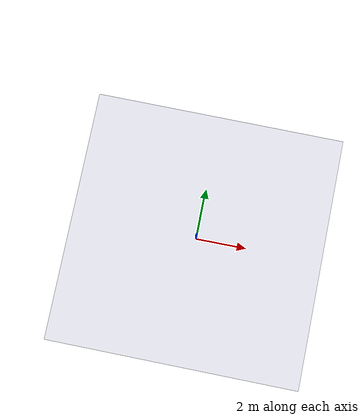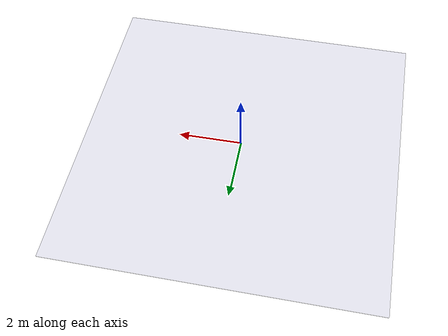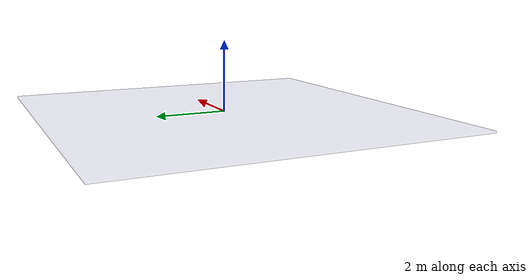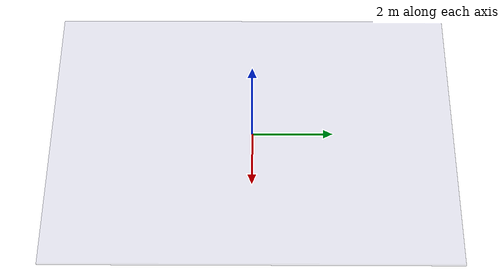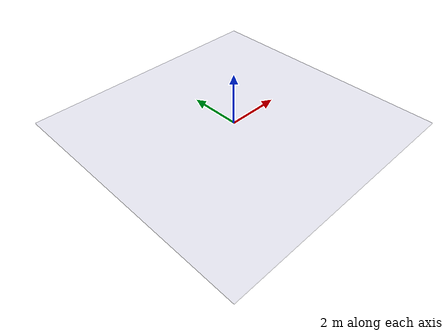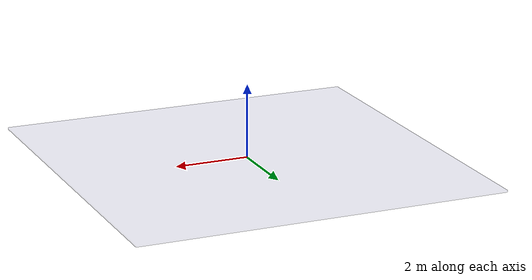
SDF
<?xml version="1.0"?>
<sdf version="1.7">
  <model name="floor">
    <!--
    We use a 3 x3x0.1 m rectangular block to represent a rigid floor
    -->
    <link name="floor">
      <pose>0 0 0 0 0 0</pose>
      <inertial>
        <pose>0 0 0 0 0 0</pose>
        <mass>0.1</mass>
      </inertial>
      <visual name="visual">
        <pose>0 0 -2.5e-2 0 0 0</pose>
        <geometry>
          <box>
            <size>10 10 5.0e-2</size>
          </box>
        </geometry>
        <material>
          <diffuse>0.5 0.5 0.7 0.2</diffuse>
        </material>
      </visual>
      <collision name="collision">
        <pose>0 0 -2.5e-2 0 0 0</pose>
        <geometry>
          <box>
            <size>10 10 5.0e-2</size>
          </box>
        </geometry>
        <drake:proximity_properties>
          <drake:rigid_hydroelastic/>
          <drake:mu_dynamic> 0.5 </drake:mu_dynamic>
          <drake:mu_static> 0.5 </drake:mu_static>
          <drake:hunt_crossley_dissipation>3.0</drake:hunt_crossley_dissipation>
          <drake:relaxation_time>0.1</drake:relaxation_time>
        </drake:proximity_properties>
      </collision>
    </link>
  </model>
</sdf>
